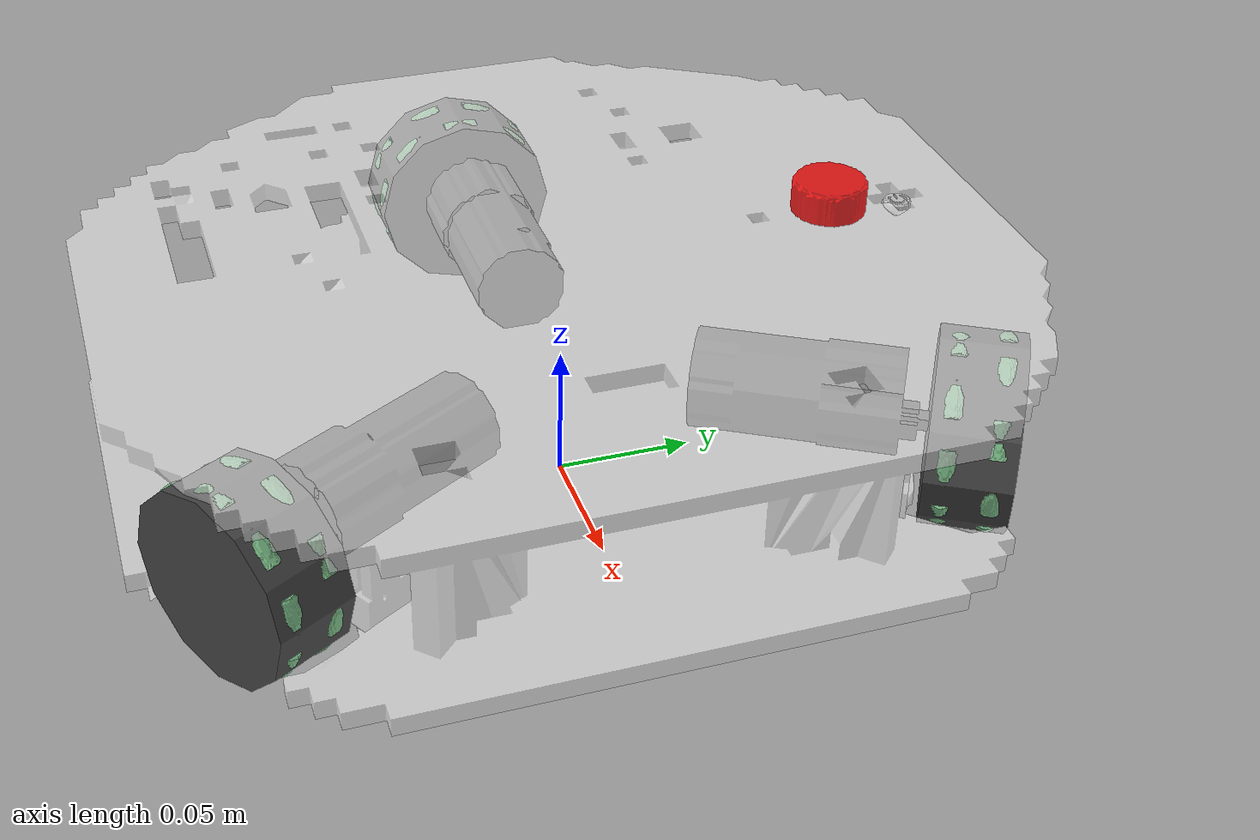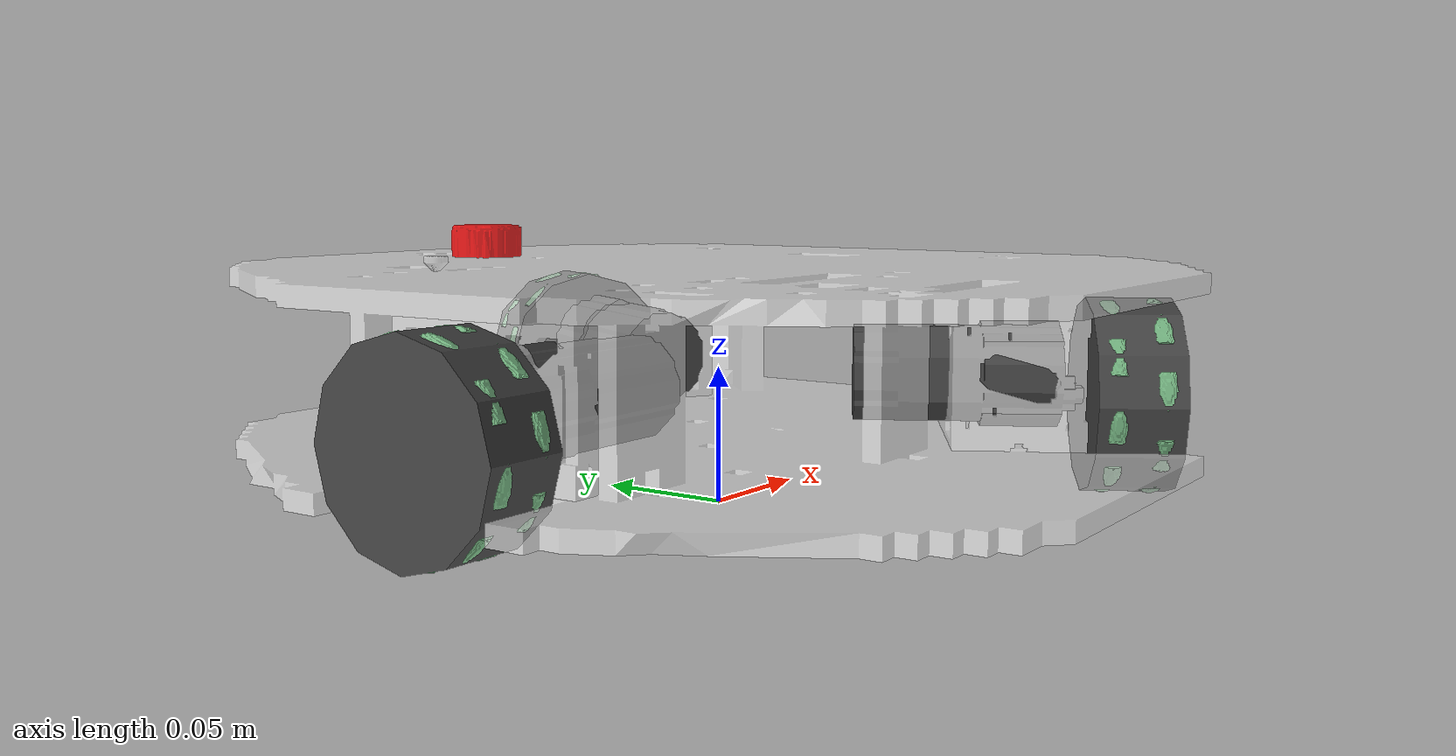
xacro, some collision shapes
<?xml version="1.0"?>
<robot xmlns:xacro="http://ros.org/wiki/xacro" name="robotont_gen2">
    <xacro:include filename="$(find robotont_description)/urdf/shared/rim.urdf.xacro"/>
    <xacro:include filename="$(find robotont_description)/urdf/gen2_1/base.urdf.xacro"/>
    <xacro:include filename="$(find robotont_description)/urdf/gen2_1/motor.urdf.xacro"/>

    <xacro:arg name="prefix" default=""/>
    <xacro:property name="prefix" value="$(arg prefix)"/>

    <xacro:property name="wheel_distance" value="0.146"/>
    <xacro:property name="wheel_center_height" value="0.021"/>
    <xacro:property name="wheel_length" value="0.0225"/>
    <xacro:property name="roller_color" value="0.45 0.7 0.5 1.0"/>
    <xacro:property name="rim_color" value="0.26 0.26 0.26 1.0"/>
    <xacro:property name="motor_color" value="0.26 0.26 0.26 1.0"/>

    <xacro:property name="frame_height" value="0.065"/>
    <xacro:property name="frame_ground_clearance" value="0.01"/>
    <xacro:property name="frame_thickness" value="0.000025"/>
    <xacro:property name="base_color" value="1.0 1.0 1.0 0.6"/>
    <xacro:property name="e_button_color" value="1.0 0 0 0.8"/>
    <xacro:property name="power_button_color" value="0.75 0.75 0.75 1.0"/>

    <link name="${prefix}base_footprint"/>

    <xacro:base_macro
        color="${base_color}"
        e_button_color="${e_button_color}"
        power_button_color="${power_button_color}"
        frame_height="${frame_height}"
        frame_ground_clearance="${frame_ground_clearance}"
        prefix="${prefix}"
    />

    <!-- Motor modules -->
    <xacro:motor_macro
        name="back"
        color="${base_color}"
        motor_color="${motor_color}"
        angle="${-3 * pi/2}"
        z_rotation="0"
        wheel_center_height="${wheel_center_height}"
        frame_ground_clearance="${frame_ground_clearance}"
        frame_thickness="${frame_thickness}"
        distance="${-wheel_distance}"
        gap="-0.016"
        prefix="${prefix}"
    />

    <xacro:motor_macro
        name="right"
        color="${base_color}"
        motor_color="${motor_color}"
        angle="${5 * pi / 6}"
        z_rotation="${pi}"
        wheel_center_height="${wheel_center_height}"
        frame_ground_clearance="${frame_ground_clearance}"
        frame_thickness="${frame_thickness}"
        distance="${wheel_distance}"
        gap="-0.1"
        prefix="${prefix}"
    />

    <xacro:motor_macro
        name="left"
        color="${base_color}"
        motor_color="${motor_color}"
        angle="${7 * pi / 6}"
        z_rotation="0"
        wheel_center_height="${wheel_center_height}"
        frame_ground_clearance="${frame_ground_clearance}"
        frame_thickness="${frame_thickness}"
        distance="${-wheel_distance}"
        gap="-0.016"
        prefix="${prefix}"
    />

    <!-- Wheels -->
    <xacro:rim_macro
        name="back"
        color="${rim_color}"
        roller_color="${roller_color}"
        angle="${3*pi/2}"
        wheel_distance="${wheel_distance}"
        wheel_center_height="${wheel_center_height}"
        prefix="${prefix}"
    />
    <xacro:rim_macro
        name="left"
        color="${rim_color}"
        roller_color="${roller_color}"
        angle="${5 * pi / 6}"
        wheel_distance="${wheel_distance}"
        wheel_center_height="${wheel_center_height}"
        prefix="${prefix}"
    />
    <xacro:rim_macro
        name="right"
        color="${rim_color}"
        roller_color="${roller_color}"
        angle="${7 * pi / 6}"
        flip_axis="-1"
        wheel_distance="${-wheel_distance}"
        wheel_center_height="${wheel_center_height}"
        prefix="${prefix}"
    />
</robot>

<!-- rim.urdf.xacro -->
<robot
    xmlns:xacro="http://ros.org/wiki/xacro">
    <xacro:include filename="$(find robotont_description)/urdf/shared/roller.urdf.xacro"/>

    <xacro:property name="roller_radial_dist" value="0.0295" />
    <xacro:property name="roller_z_distance" value="0.008" />
    <xacro:property name="roller_init_angle" value="0" />
    <xacro:property name="wheel_height_offset" value="${wheel_center_height / 2}"/>

    <xacro:macro name="rim_macro" params="
        name
        color
        roller_color
        angle
        flip_axis:=1
        wheel_distance
        wheel_center_height
        wheel_center_offset:=0
        prefix
    ">
        <link name="${prefix}rim_${name}_link">
            <visual>
                <geometry>
                    <mesh filename="package://robotont_description/meshes/shared/2.75rim.STL"/>
                </geometry>
                <material name="rim_${name}_material">
                    <color rgba="${color}"/>
                </material>
            </visual>
            <collision>
                <geometry>
                    <cylinder radius="0.035" length="0.03"/>
                </geometry>
            </collision>
            <inertial>
                <origin xyz="0 ${wheel_height_offset} 0"/>
                <mass value="0.00835758"/>
                <inertia
                    ixx="6.63684e-07"
                    ixy="0"
                    ixz="0"
                    iyy="6.63684e-07"
                    iyz="0"
                    izz="9.40333e-07"
                />
            </inertial>
        </link>

        <joint name="${prefix}rim_${name}_joint" type="continuous">
            <parent link="${prefix}base_link" />
            <child link="${prefix}rim_${name}_link" />
            <axis xyz="0 0 ${flip_axis}"/>
            <origin
                xyz="${wheel_center_offset + (wheel_distance * sin(angle))} ${ -wheel_distance * cos(angle)} ${wheel_center_height + wheel_height_offset}"
                rpy="${pi/2} 0 ${angle + pi}"
            />
            <dynamics damping="0.1"/>
        </joint>

        <!-- Front rollers -->
        <xacro:roller_macro
            parent="${name}"
            color="${roller_color}"
            radial_dist="${roller_radial_dist}"
            z_distance="${roller_z_distance}"
            z_distance_reflect="-1"
            init_angle="${roller_init_angle}"
            no_of_roller="0"
            prefix="${prefix}"
        />
        <xacro:roller_macro
            parent="${name}"
            color="${roller_color}"
            radial_dist="${roller_radial_dist}"
            z_distance="${roller_z_distance}"
            z_distance_reflect="-1"
            init_angle="${roller_init_angle}"
            no_of_roller="1"
            prefix="${prefix}"
        />
        <xacro:roller_macro
            parent="${name}"
            color="${roller_color}"
            radial_dist="${roller_radial_dist}"
            z_distance="${roller_z_distance}"
            z_distance_reflect="-1"
            init_angle="${roller_init_angle}"
            no_of_roller="2"
            prefix="${prefix}"
        />
        <xacro:roller_macro
            parent="${name}"
            color="${roller_color}"
            radial_dist="${roller_radial_dist}"
            z_distance="${roller_z_distance}"
            z_distance_reflect="-1"
            init_angle="${roller_init_angle}"
            no_of_roller="3"
            prefix="${prefix}"
        />
        <xacro:roller_macro
            parent="${name}"
            color="${roller_color}"
            radial_dist="${roller_radial_dist}"
            z_distance="${roller_z_distance}"
            z_distance_reflect="-1"
            init_angle="${roller_init_angle}"
            no_of_roller="4"
            prefix="${prefix}"
        />
        <xacro:roller_macro
            parent="${name}"
            color="${roller_color}"
            radial_dist="${roller_radial_dist}"
            z_distance="${roller_z_distance}"
            z_distance_reflect="-1"
            init_angle="${roller_init_angle}"
            no_of_roller="5"
            prefix="${prefix}"
        />
        <xacro:roller_macro
            parent="${name}"
            color="${roller_color}"
            radial_dist="${roller_radial_dist}"
            z_distance="${roller_z_distance}"
            z_distance_reflect="-1"
            init_angle="${roller_init_angle}"
            no_of_roller="6"
            prefix="${prefix}"
        />
        <xacro:roller_macro
            parent="${name}"
            color="${roller_color}"
            radial_dist="${roller_radial_dist}"
            z_distance="${roller_z_distance}"
            z_distance_reflect="-1"
            init_angle="${roller_init_angle}"
            no_of_roller="7"
            prefix="${prefix}"
        />
        <xacro:roller_macro
            parent="${name}"
            color="${roller_color}"
            radial_dist="${roller_radial_dist}"
            z_distance="${roller_z_distance}"
            z_distance_reflect="-1"
            init_angle="${roller_init_angle}"
            no_of_roller="8"
            prefix="${prefix}"
        />
        <!-- Back rollers -->
        <xacro:roller_macro
            parent="${name}"
            color="${roller_color}"
            radial_dist="${roller_radial_dist}"
            z_distance="${roller_z_distance}"
            z_distance_reflect="1"
            init_angle="${roller_init_angle}"
            no_of_roller="0"
            prefix="${prefix}"
        />
        <xacro:roller_macro
            parent="${name}"
            color="${roller_color}"
            radial_dist="${roller_radial_dist}"
            z_distance="${roller_z_distance}"
            z_distance_reflect="1"
            init_angle="${roller_init_angle}"
            no_of_roller="1"
            prefix="${prefix}"
        />
        <xacro:roller_macro
            parent="${name}"
            color="${roller_color}"
            radial_dist="${roller_radial_dist}"
            z_distance="${roller_z_distance}"
            z_distance_reflect="1"
            init_angle="${roller_init_angle}"
            no_of_roller="2"
            prefix="${prefix}"
        />
        <xacro:roller_macro
            parent="${name}"
            color="${roller_color}"
            radial_dist="${roller_radial_dist}"
            z_distance="${roller_z_distance}"
            z_distance_reflect="1"
            init_angle="${roller_init_angle}"
            no_of_roller="3"
            prefix="${prefix}"
        />
        <xacro:roller_macro
            parent="${name}"
            color="${roller_color}"
            radial_dist="${roller_radial_dist}"
            z_distance="${roller_z_distance}"
            z_distance_reflect="1"
            init_angle="${roller_init_angle}"
            no_of_roller="4"
            prefix="${prefix}"
        />
        <xacro:roller_macro
            parent="${name}"
            color="${roller_color}"
            radial_dist="${roller_radial_dist}"
            z_distance="${roller_z_distance}"
            z_distance_reflect="1"
            init_angle="${roller_init_angle}"
            no_of_roller="5"
            prefix="${prefix}"
        />
        <xacro:roller_macro
            parent="${name}"
            color="${roller_color}"
            radial_dist="${roller_radial_dist}"
            z_distance="${roller_z_distance}"
            z_distance_reflect="1"
            init_angle="${roller_init_angle}"
            no_of_roller="6"
            prefix="${prefix}"
        />
        <xacro:roller_macro
            parent="${name}"
            color="${roller_color}"
            radial_dist="${roller_radial_dist}"
            z_distance="${roller_z_distance}"
            z_distance_reflect="1"
            init_angle="${roller_init_angle}"
            no_of_roller="7"
            prefix="${prefix}"
        />
        <xacro:roller_macro
            parent="${name}"
            color="${roller_color}"
            radial_dist="${roller_radial_dist}"
            z_distance="${roller_z_distance}"
            z_distance_reflect="1"
            init_angle="${roller_init_angle}"
            no_of_roller="8"
            prefix="${prefix}"
        />
    </xacro:macro>
</robot>

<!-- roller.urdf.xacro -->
<robot
    xmlns:xacro="http://ros.org/wiki/xacro">
    <xacro:macro
		name="roller_macro"
		params="parent color radial_dist z_distance z_distance_reflect init_angle no_of_roller prefix"
	>
        <xacro:if value="${z_distance_reflect==-1}">
            <xacro:property name="name" value="front_${no_of_roller}" />
            <xacro:property name="offset" value="0" />
        </xacro:if>
        <xacro:unless value="${z_distance_reflect==-1}">
            <xacro:property name="name" value="back_${no_of_roller}" />
            <xacro:property name="offset" value="${pi}" />
        </xacro:unless>
        <link name="${prefix}roller_${name}_rim_${parent}_link">
            <visual>
                <geometry>
                    <mesh scale="0.001 0.001 0.001" filename="package://robotont_description/meshes/shared/2.75roller.STL"/>
                </geometry>
                <material name="roller_material">
                    <color rgba="${color}"/>
                </material>
            </visual>
        </link>
        <joint name="${prefix}roller_${name}_rim_${parent}_joint" type="fixed">
            <parent link="${prefix}rim_${parent}_link"/>
            <child link="${prefix}roller_${name}_rim_${parent}_link"/>
            <origin
				xyz="${radial_dist*sin(-1*z_distance_reflect*(init_angle+offset+no_of_roller*2*pi/9))} ${-radial_dist*cos(-1*z_distance_reflect*(init_angle+offset+no_of_roller*2*pi/9))} ${z_distance*z_distance_reflect}"
				rpy="0 0 ${-1*z_distance_reflect*(init_angle+no_of_roller*2*pi/9)}"
			/>
        </joint>
    </xacro:macro>
</robot>

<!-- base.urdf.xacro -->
<robot xmlns:xacro="http://ros.org/wiki/xacro">
    <xacro:property name="e_button_offset" value="0.0035"/>

    <xacro:macro name="base_macro" params="
        color
        e_button_color
        power_button_color
        frame_height
        frame_ground_clearance
        prefix"
    >
        <link name="${prefix}base_link">
            <visual>
                <origin rpy="0 0 ${pi/2}" xyz="0 0 ${frame_ground_clearance}"/>
                <geometry>
                    <mesh filename="package://robotont_description/meshes/gen2_1/frame_module.STL"/>
                </geometry>
                <material name="base_material">
                    <color rgba="${color}"/>
                </material>
            </visual>
            <collision>
                <geometry>
                    <mesh filename="package://robotont_description/meshes/shared/collision_body.STL"/>
                </geometry>
                <origin rpy="${pi/2} 0 ${pi/2}" xyz="-0.01 0 ${frame_ground_clearance + 0.035}"/>
            </collision>
            <inertial>
                <mass value="3"/>
                <inertia
                    ixx="0.02462503"
                    ixy="0"
                    ixz="0"
                    iyy="0.02082228"
                    iyz="0"
                    izz="0.04324237"
                />
            </inertial>
        </link>

        <joint name="${prefix}base_joint" type="fixed">
            <parent link="${prefix}base_footprint"/>
            <child link="${prefix}base_link"/>
            <origin xyz="0 0 ${frame_ground_clearance}" rpy="0 0 0"/>
        </joint>

        <!-- E-button -->
        <link name="${prefix}e_button_link">
            <visual>
                <geometry>
                    <mesh filename="package://robotont_description/meshes/gen3/e_stop_button.STL"/>
                </geometry>
                <material name="e_button_material">
                    <color rgba="${e_button_color}"/>
                </material>
            </visual>
        </link>

        <joint name="e_button_joint" type="fixed">
            <parent link="${prefix}base_link"/>
            <child link="${prefix}e_button_link"/>
            <axis xyz="0 0 1"/>
            <origin
                xyz="-0.0094 0.105 ${frame_ground_clearance + frame_height - e_button_offset}"
                rpy="${pi / 2} 0 ${pi / 2}"
            />
        </joint>

        <!-- Power button -->
        <link name="${prefix}power_button_link">
            <visual>
                <geometry>
                    <mesh filename="package://robotont_description/meshes/gen3/power_button.STL"/>
                </geometry>
                <material name="power_button_material">
                    <color rgba="${power_button_color}"/>
                </material>
            </visual>
        </link>

        <joint name="power_button_joint" type="fixed">
            <parent link="${prefix}base_link"/>
            <child link="${prefix}power_button_link"/>
            <axis xyz="0 0 1"/>
            <origin
                xyz="-0.0094 0.133 ${frame_ground_clearance + frame_height - 0.001}"
                rpy="${pi / 2} 0 ${pi / 2}"
            />
        </joint>
    </xacro:macro>
</robot>

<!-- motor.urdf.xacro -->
<robot
    xmlns:xacro="http://ros.org/wiki/xacro">
    <xacro:property name="length" value="0.0946"/>

    <xacro:macro name="motor_macro" params="
        name
        color
        motor_color
        angle
        wheel_center_height
        frame_ground_clearance
        frame_thickness
        distance
        gap
        z_rotation
        prefix
    ">
        <xacro:property name="ground_clearance" value="${1.5 * wheel_center_height + frame_ground_clearance + frame_thickness}"/>
        <xacro:property name="distance_from_center" value="${distance + (wheel_center_height / 2) + (length / 2) + gap}"/>

        <link name="${prefix}motor_mount_${name}_link">
            <visual>
                <geometry>
                    <mesh filename="package://robotont_description/meshes/gen2_1/motor_module.STL"/>
                </geometry>
                <material name="motor_mount_${name}_material">
                    <color rgba="${color}"/>
                </material>
            </visual>
        </link>

        <joint name="motor_mount_${name}_joint" type="fixed">
            <parent link="${prefix}base_link"/>
            <child link="${prefix}motor_mount_${name}_link"/>
            <axis xyz="0 0 1"/>
            <origin
                xyz="${distance_from_center * sin(angle)} ${-distance_from_center * cos(angle)} ${ground_clearance}"
                rpy="${pi/2} 0 ${angle + pi + z_rotation}"
            />
        </joint>

        <link name="${prefix}motor_${name}_link">
            <visual>
                <geometry>
                    <mesh filename="package://robotont_description/meshes/gen2_1/motor.STL"/>
                </geometry>
                <material name="motor_${name}_material">
                    <color rgba="${motor_color}"/>
                </material>
            </visual>
        </link>

        <joint name="motor_${name}_joint" type="fixed">
            <parent link="${prefix}motor_mount_${name}_link"/>
            <child link="${prefix}motor_${name}_link"/>
            <axis xyz="0 0 1"/>
            <origin
                xyz="0 -0.0028 -0.008"
            />
        </joint>
    </xacro:macro>
</robot>
